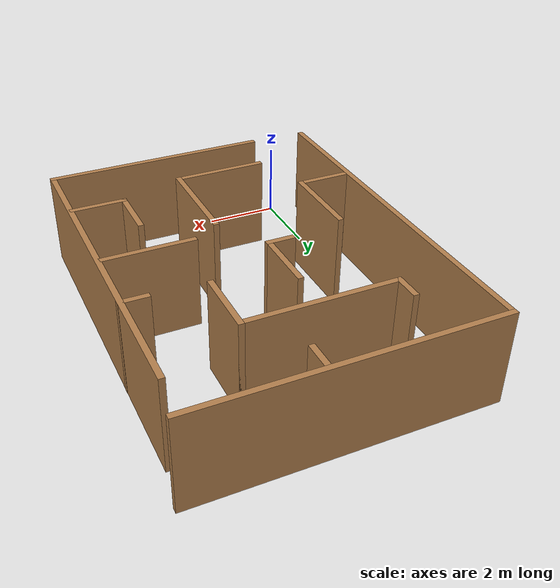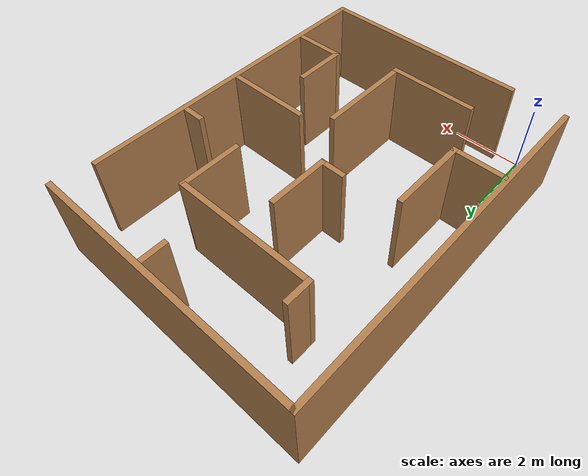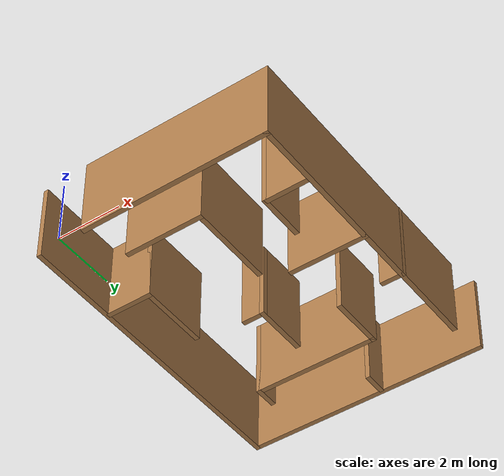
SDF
<?xml version='1.0'?>
<sdf version='1.7'>
  <model name='obstacle_course_6'>
    <pose>2.95209 5.08769 0 0 -0 0</pose>
    <link name='Wall_10'>
      <collision name='Wall_10_Collision'>
        <geometry>
          <box>
            <size>7.75 0.15 2.5</size>
          </box>
        </geometry>
        <pose>0 0 1.25 0 -0 0</pose>
      </collision>
      <visual name='Wall_10_Visual'>
        <pose>0 0 1.25 0 -0 0</pose>
        <geometry>
          <box>
            <size>7.75 0.15 2.5</size>
          </box>
        </geometry>
        <material>
          <script>
            <uri>file://media/materials/scripts/gazebo.material</uri>
            <name>Gazebo/Wood</name>
          </script>
          <ambient>1 1 1 1</ambient>
        </material>
        <meta>
          <layer>0</layer>
        </meta>
      </visual>
      <pose>0 5.01269 0 0 -0 0</pose>
    </link>
    <link name='Wall_18'>
      <collision name='Wall_18_Collision'>
        <geometry>
          <box>
            <size>6 0.15 2.5</size>
          </box>
        </geometry>
        <pose>0 0 1.25 0 -0 0</pose>
      </collision>
      <visual name='Wall_18_Visual'>
        <pose>0 0 1.25 0 -0 0</pose>
        <geometry>
          <box>
            <size>6 0.15 2.5</size>
          </box>
        </geometry>
        <material>
          <script>
            <uri>file://media/materials/scripts/gazebo.material</uri>
            <name>Gazebo/Wood</name>
          </script>
          <ambient>1 1 1 1</ambient>
        </material>
        <meta>
          <layer>0</layer>
        </meta>
      </visual>
      <pose>0.698755 -4.92497 0 0 -0 0</pose>
    </link>
    <link name='Wall_19'>
      <collision name='Wall_19_Collision'>
        <geometry>
          <box>
            <size>9 0.15 2.5</size>
          </box>
        </geometry>
        <pose>0 0 1.25 0 -0 0</pose>
      </collision>
      <visual name='Wall_19_Visual'>
        <pose>0 0 1.25 0 -0 0</pose>
        <geometry>
          <box>
            <size>9 0.15 2.5</size>
          </box>
        </geometry>
        <material>
          <script>
            <uri>file://media/materials/scripts/gazebo.material</uri>
            <name>Gazebo/Wood</name>
          </script>
          <ambient>1 1 1 1</ambient>
        </material>
        <meta>
          <layer>0</layer>
        </meta>
      </visual>
      <pose>3.62375 -0.499968 0 0 -0 1.5708</pose>
    </link>
    <link name='Wall_30'>
      <collision name='Wall_30_Collision'>
        <geometry>
          <box>
            <size>4 0.15 2.5</size>
          </box>
        </geometry>
        <pose>0 0 1.25 0 -0 0</pose>
      </collision>
      <visual name='Wall_30_Visual'>
        <pose>0 0 1.25 0 -0 0</pose>
        <geometry>
          <box>
            <size>4 0.15 2.5</size>
          </box>
        </geometry>
        <material>
          <script>
            <uri>file://media/materials/scripts/gazebo.material</uri>
            <name>Gazebo/Wood</name>
          </script>
          <ambient>1 1 1 1</ambient>
        </material>
        <meta>
          <layer>0</layer>
        </meta>
      </visual>
      <pose>-0.346194 2.99459 0 0 -0 0</pose>
    </link>
    <link name='Wall_33'>
      <collision name='Wall_33_Collision'>
        <geometry>
          <box>
            <size>1.75 0.15 2.5</size>
          </box>
        </geometry>
        <pose>0 0 1.25 0 -0 0</pose>
      </collision>
      <visual name='Wall_33_Visual'>
        <pose>0 0 1.25 0 -0 0</pose>
        <geometry>
          <box>
            <size>1.75 0.15 2.5</size>
          </box>
        </geometry>
        <material>
          <script>
            <uri>file://media/materials/scripts/gazebo.material</uri>
            <name>Gazebo/Wood</name>
          </script>
          <ambient>1 1 1 1</ambient>
        </material>
        <meta>
          <layer>0</layer>
        </meta>
      </visual>
      <pose>-0.294056 1.19081 0 0 -0 -1.5708</pose>
    </link>
    <link name='Wall_44'>
      <collision name='Wall_44_Collision'>
        <geometry>
          <box>
            <size>0.75 0.15 2.5</size>
          </box>
        </geometry>
        <pose>0 0 1.25 0 -0 0</pose>
      </collision>
      <visual name='Wall_44_Visual'>
        <pose>0 0 1.25 0 -0 0</pose>
        <geometry>
          <box>
            <size>0.75 0.15 2.5</size>
          </box>
        </geometry>
        <material>
          <script>
            <uri>file://media/materials/scripts/gazebo.material</uri>
            <name>Gazebo/Wood</name>
          </script>
          <ambient>1 1 1 1</ambient>
        </material>
        <meta>
          <layer>0</layer>
        </meta>
      </visual>
      <pose>3.3298 1.29121 0 0 -0 3.14159</pose>
    </link>
    <link name='Wall_48'>
      <collision name='Wall_48_Collision'>
        <geometry>
          <box>
            <size>0.75 0.15 2.5</size>
          </box>
        </geometry>
        <pose>0 0 1.25 0 -0 0</pose>
      </collision>
      <visual name='Wall_48_Visual'>
        <pose>0 0 1.25 0 -0 0</pose>
        <geometry>
          <box>
            <size>0.75 0.15 2.5</size>
          </box>
        </geometry>
        <material>
          <script>
            <uri>file://media/materials/scripts/gazebo.material</uri>
            <name>Gazebo/Wood</name>
          </script>
          <ambient>1 1 1 1</ambient>
        </material>
        <meta>
          <layer>0</layer>
        </meta>
      </visual>
      <pose>0.581622 4.61889 0 0 -0 -1.5708</pose>
    </link>
    <link name='Wall_50'>
      <collision name='Wall_50_Collision'>
        <geometry>
          <box>
            <size>0.75 0.15 2.5</size>
          </box>
        </geometry>
        <pose>0 0 1.25 0 -0 0</pose>
      </collision>
      <visual name='Wall_50_Visual'>
        <pose>0 0 1.25 0 -0 0</pose>
        <geometry>
          <box>
            <size>0.75 0.15 2.5</size>
          </box>
        </geometry>
        <material>
          <script>
            <uri>file://media/materials/scripts/gazebo.material</uri>
            <name>Gazebo/Wood</name>
          </script>
          <ambient>1 1 1 1</ambient>
        </material>
        <meta>
          <layer>0</layer>
        </meta>
      </visual>
      <pose>-2.27119 3.29459 0 0 -0 1.5708</pose>
    </link>
    <link name='Wall_59'>
      <collision name='Wall_59_Collision'>
        <geometry>
          <box>
            <size>2.5 0.15 2.5</size>
          </box>
        </geometry>
        <pose>0 0 1.25 0 -0 0</pose>
      </collision>
      <visual name='Wall_59_Visual'>
        <pose>0 0 1.25 0 -0 0</pose>
        <geometry>
          <box>
            <size>2.5 0.15 2.5</size>
          </box>
        </geometry>
        <material>
          <script>
            <uri>file://media/materials/scripts/gazebo.material</uri>
            <name>Gazebo/Wood</name>
          </script>
          <ambient>1 1 1 1</ambient>
        </material>
        <meta>
          <layer>0</layer>
        </meta>
      </visual>
      <pose>2.4482 -0.482604 0 0 -0 3.14159</pose>
    </link>
    <link name='Wall_62'>
      <collision name='Wall_62_Collision'>
        <geometry>
          <box>
            <size>1.5 0.15 2.5</size>
          </box>
        </geometry>
        <pose>0 0 1.25 0 -0 0</pose>
      </collision>
      <visual name='Wall_62_Visual'>
        <pose>0 0 1.25 0 -0 0</pose>
        <geometry>
          <box>
            <size>1.5 0.15 2.5</size>
          </box>
        </geometry>
        <material>
          <script>
            <uri>file://media/materials/scripts/gazebo.material</uri>
            <name>Gazebo/Wood</name>
          </script>
          <ambient>1 1 1 1</ambient>
        </material>
        <meta>
          <layer>0</layer>
        </meta>
      </visual>
      <pose>2.90283 -3.02325 0 0 -0 3.14159</pose>
    </link>
    <link name='Wall_63'>
      <collision name='Wall_63_Collision'>
        <geometry>
          <box>
            <size>1.5 0.15 2.5</size>
          </box>
        </geometry>
        <pose>0 0 1.25 0 -0 0</pose>
      </collision>
      <visual name='Wall_63_Visual'>
        <pose>0 0 1.25 0 -0 0</pose>
        <geometry>
          <box>
            <size>1.5 0.15 2.5</size>
          </box>
        </geometry>
        <material>
          <script>
            <uri>file://media/materials/scripts/gazebo.material</uri>
            <name>Gazebo/Wood</name>
          </script>
          <ambient>1 1 1 1</ambient>
        </material>
        <meta>
          <layer>0</layer>
        </meta>
      </visual>
      <pose>2.22783 -2.34825 0 0 -0 1.5708</pose>
    </link>
    <link name='Wall_69'>
      <collision name='Wall_69_Collision'>
        <geometry>
          <box>
            <size>1.5 0.15 2.5</size>
          </box>
        </geometry>
        <pose>0 0 1.25 0 -0 0</pose>
      </collision>
      <visual name='Wall_69_Visual'>
        <pose>0 0 1.25 0 -0 0</pose>
        <geometry>
          <box>
            <size>1.5 0.15 2.5</size>
          </box>
        </geometry>
        <material>
          <script>
            <uri>file://media/materials/scripts/gazebo.material</uri>
            <name>Gazebo/Wood</name>
          </script>
          <ambient>1 1 1 1</ambient>
        </material>
        <meta>
          <layer>0</layer>
        </meta>
      </visual>
      <pose>-3.04598 -2.00884 0 0 -0 0</pose>
    </link>
    <link name='Wall_71'>
      <collision name='Wall_71_Collision'>
        <geometry>
          <box>
            <size>2.25 0.15 2.5</size>
          </box>
        </geometry>
        <pose>0 0 1.25 0 -0 0</pose>
      </collision>
      <visual name='Wall_71_Visual'>
        <pose>0 0 1.25 0 -0 0</pose>
        <geometry>
          <box>
            <size>2.25 0.15 2.5</size>
          </box>
        </geometry>
        <material>
          <script>
            <uri>file://media/materials/scripts/gazebo.material</uri>
            <name>Gazebo/Wood</name>
          </script>
          <ambient>1 1 1 1</ambient>
        </material>
        <meta>
          <layer>0</layer>
        </meta>
      </visual>
      <pose>-2.37098 -0.958841 0 0 -0 1.5708</pose>
    </link>
    <link name='Wall_76'>
      <collision name='Wall_76_Collision'>
        <geometry>
          <box>
            <size>2.5 0.15 2.5</size>
          </box>
        </geometry>
        <pose>0 0 1.25 0 -0 0</pose>
      </collision>
      <visual name='Wall_76_Visual'>
        <pose>0 0 1.25 0 -0 0</pose>
        <geometry>
          <box>
            <size>2.5 0.15 2.5</size>
          </box>
        </geometry>
        <material>
          <script>
            <uri>file://media/materials/scripts/gazebo.material</uri>
            <name>Gazebo/Wood</name>
          </script>
          <ambient>1 1 1 1</ambient>
        </material>
        <meta>
          <layer>0</layer>
        </meta>
      </visual>
      <pose>-0.648482 -3.56134 0 0 -0 0</pose>
    </link>
    <link name='Wall_77'>
      <collision name='Wall_77_Collision'>
        <geometry>
          <box>
            <size>2.75 0.15 2.5</size>
          </box>
        </geometry>
        <pose>0 0 1.25 0 -0 0</pose>
      </collision>
      <visual name='Wall_77_Visual'>
        <pose>0 0 1.25 0 -0 0</pose>
        <geometry>
          <box>
            <size>2.75 0.15 2.5</size>
          </box>
        </geometry>
        <material>
          <script>
            <uri>file://media/materials/scripts/gazebo.material</uri>
            <name>Gazebo/Wood</name>
          </script>
          <ambient>1 1 1 1</ambient>
        </material>
        <meta>
          <layer>0</layer>
        </meta>
      </visual>
      <pose>0.526518 -2.26134 0 0 -0 1.5708</pose>
    </link>
    <link name='Wall_79'>
      <collision name='Wall_79_Collision'>
        <geometry>
          <box>
            <size>0.75 0.15 2.5</size>
          </box>
        </geometry>
        <pose>0 0 1.25 0 -0 0</pose>
      </collision>
      <visual name='Wall_79_Visual'>
        <pose>0 0 1.25 0 -0 0</pose>
        <geometry>
          <box>
            <size>0.75 0.15 2.5</size>
          </box>
        </geometry>
        <material>
          <script>
            <uri>file://media/materials/scripts/gazebo.material</uri>
            <name>Gazebo/Wood</name>
          </script>
          <ambient>1 1 1 1</ambient>
        </material>
        <meta>
          <layer>0</layer>
        </meta>
      </visual>
      <pose>-0.594056 0.390813 0 0 -0 3.14159</pose>
    </link>
    <link name='Wall_81'>
      <collision name='Wall_81_Collision'>
        <geometry>
          <box>
            <size>1.75 0.15 2.5</size>
          </box>
        </geometry>
        <pose>0 0 1.25 0 -0 0</pose>
      </collision>
      <visual name='Wall_81_Visual'>
        <pose>0 0 1.25 0 -0 0</pose>
        <geometry>
          <box>
            <size>1.75 0.15 2.5</size>
          </box>
        </geometry>
        <material>
          <script>
            <uri>file://media/materials/scripts/gazebo.material</uri>
            <name>Gazebo/Wood</name>
          </script>
          <ambient>1 1 1 1</ambient>
        </material>
        <meta>
          <layer>0</layer>
        </meta>
      </visual>
      <pose>1.57881 2.19459 0 0 -0 -1.5708</pose>
    </link>
    <link name='Wall_9'>
      <collision name='Wall_9_Collision'>
        <geometry>
          <box>
            <size>10 0.15 2.5</size>
          </box>
        </geometry>
        <pose>0 0 1.25 0 -0 0</pose>
      </collision>
      <visual name='Wall_9_Visual'>
        <pose>0 0 1.25 0 -0 0</pose>
        <geometry>
          <box>
            <size>10 0.15 2.5</size>
          </box>
        </geometry>
        <material>
          <script>
            <uri>file://media/materials/scripts/gazebo.material</uri>
            <name>Gazebo/Wood</name>
          </script>
          <ambient>1 1 1 1</ambient>
        </material>
        <meta>
          <layer>0</layer>
        </meta>
      </visual>
      <pose>-3.8 0.087685 0 0 -0 1.5708</pose>
    </link>
    <static>1</static>
  </model>
</sdf>
